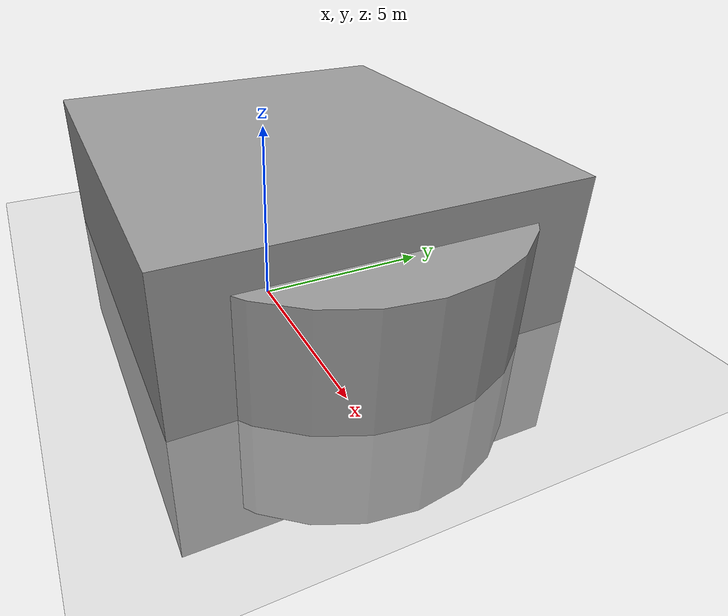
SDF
<sdf version="1.7">
 <world name="default">
  <light name="sun" type="directional">
   <pose>0 0 10 0 -0 0</pose>
   <diffuse>0.8 0.8 0.8 1</diffuse>
   <specular>0.2 0.2 0.2 1</specular>
   <attenuation>
    <range>1000</range>
    <constant>0.9</constant>
    <linear>0.01</linear>
    <quadratic>0.001</quadratic>
   </attenuation>
   <direction>-0.5 0.1 -0.9</direction>
   <spot><inner_angle>0</inner_angle><outer_angle>0</outer_angle><falloff>0</falloff></spot>
  </light>
  <model name="ground_plane">
   <static>1</static>
   <link name="link">
    <collision name="collision">
     <geometry><plane><normal>0 0 1</normal><size>100 100</size></plane></geometry>
     <surface>
      <contact><collide_bitmask>65535</collide_bitmask></contact>
      <friction><ode><mu>100</mu><mu2>50</mu2></ode></friction>
     </surface>
    </collision>
    <visual name="visual">
     <cast_shadows>0</cast_shadows>
     <geometry><plane><normal>0 0 1</normal><size>100 100</size></plane></geometry>
     <material>
      <script><uri>file://media/materials/scripts/gazebo.material</uri><name>Gazebo/Grey</name></script>
     </material>
    </visual>
   </link>
  </model>
  <gravity>0 0 -9.8</gravity>
  <magnetic_field>6e-06 2.3e-05 -4.2e-05</magnetic_field>
  <atmosphere type="adiabatic"/>
  <physics type="ode">
   <max_step_size>0.001</max_step_size>
   <real_time_factor>1</real_time_factor>
   <real_time_update_rate>1000</real_time_update_rate>
  </physics>
  <scene><ambient>0.4 0.4 0.4 1</ambient><background>0.7 0.7 0.7 1</background><shadows>1</shadows></scene>
  <spherical_coordinates>
   <surface_model>EARTH_WGS84</surface_model>
   <latitude_deg>0</latitude_deg>
   <longitude_deg>0</longitude_deg>
   <elevation>0</elevation>
   <heading_deg>0</heading_deg>
  </spherical_coordinates>
  <model name="workspace2">
   <pose>0.134816 0.665409 0 0 -0 0</pose>
   <link name="Wall_10">
    <collision name="Wall_10_Collision">
     <geometry><box><size>6.25 0.15 2.5</size></box></geometry>
     <pose>0 0 1.25 0 -0 0</pose>
    </collision>
    <visual name="Wall_10_Visual">
     <pose>0 0 1.25 0 -0 0</pose>
     <geometry><box><size>6.25 0.15 2.5</size></box></geometry>
     <material>
      <script><uri>file://media/materials/scripts/gazebo.material</uri><name>Gazebo/Grey</name></script>
      <ambient>1 0.764706 0.305882 1</ambient>
     </material>
     <meta><layer>0</layer></meta>
    </visual>
    <pose>0.007511 -3.05616 0 0 -0 3.14159</pose>
   </link>
   <link name="Wall_11">
    <collision name="Wall_11_Collision">
     <geometry><box><size>6.26234 0.15 2.5</size></box></geometry>
     <pose>0 0 1.25 0 -0 0</pose>
    </collision>
    <visual name="Wall_11_Visual">
     <pose>0 0 1.25 0 -0 0</pose>
     <geometry><box><size>6.26234 0.15 2.5</size></box></geometry>
     <material>
      <script><uri>file://media/materials/scripts/gazebo.material</uri><name>Gazebo/Grey</name></script>
      <ambient>1 0.764706 0.305882 1</ambient>
     </material>
     <meta><layer>0</layer></meta>
    </visual>
    <pose>-3.03488 0 0 0 -0 1.57329</pose>
   </link>
   <link name="Wall_12">
    <collision name="Wall_12_Collision">
     <geometry><box><size>6.25 0.15 2.5</size></box></geometry>
     <pose>0 0 1.25 0 -0 0</pose>
    </collision>
    <visual name="Wall_12_Visual">
     <pose>0 0 1.25 0 -0 0</pose>
     <geometry><box><size>6.25 0.15 2.5</size></box></geometry>
     <material>
      <script><uri>file://media/materials/scripts/gazebo.material</uri><name>Gazebo/Grey</name></script>
      <ambient>1 0.764706 0.305882 1</ambient>
     </material>
     <meta><layer>0</layer></meta>
    </visual>
    <pose>-0.007698 3.05616 0 0 -0 0</pose>
   </link>
   <link name="Wall_13">
    <collision name="Wall_13_Collision">
     <geometry><box><size>6.26234 0.15 2.5</size></box></geometry>
     <pose>0 0 1.25 0 -0 0</pose>
    </collision>
    <visual name="Wall_13_Visual">
     <pose>0 0 1.25 0 -0 0</pose>
     <geometry><box><size>6.26234 0.15 2.5</size></box></geometry>
     <material>
      <script><uri>file://media/materials/scripts/gazebo.material</uri><name>Gazebo/Grey</name></script>
      <ambient>1 0.764706 0.305882 1</ambient>
     </material>
     <meta><layer>0</layer></meta>
    </visual>
    <pose>3.04991 0 0 0 -0 -1.56831</pose>
   </link>
   <static>1</static>
  </model>
  <model name="unit_box">
   <pose>-1.22432 1.29976 0.175081 0 0 -3.7e-05</pose>
   <link name="link">
    <inertial>
     <mass>1</mass>
     <inertia>
      <ixx>0.166667</ixx>
      <ixy>0</ixy>
      <ixz>0</ixz>
      <iyy>0.166667</iyy>
      <iyz>0</iyz>
      <izz>0.166667</izz>
     </inertia>
    </inertial>
    <collision name="collision"><geometry><box><size>11.7093 10.9746 8.15573</size></box></geometry></collision>
    <visual name="visual">
     <geometry><box><size>11.7093 10.9746 8.15573</size></box></geometry>
     <material>
      <script><name>Gazebo/Grey</name><uri>file://media/materials/scripts/gazebo.material</uri></script>
     </material>
    </visual>
   </link>
  </model>
  <model name="unit_cylinder">
   <pose>1.25433 1.34885 0.200235 0 -0 0</pose>
   <link name="link">
    <inertial>
     <mass>1</mass>
     <inertia><ixx>0.145833</ixx><ixy>0</ixy><ixz>0</ixz><iyy>0.145833</iyy><iyz>0</iyz><izz>0.125</izz></inertia>
    </inertial>
    <collision name="collision">
     <geometry><cylinder><radius>5.19263</radius><length>6.23473</length></cylinder></geometry>
    </collision>
    <visual name="visual">
     <geometry><cylinder><radius>5.19263</radius><length>6.23473</length></cylinder></geometry>
     <material>
      <script><name>Gazebo/Grey</name><uri>file://media/materials/scripts/gazebo.material</uri></script>
     </material>
    </visual>
   </link>
  </model>
  <light name="user_directional_light_0" type="directional">
   <pose>0.120004 1.81494 1 0 -0 0</pose>
   <diffuse>0.5 0.5 0.5 1</diffuse>
   <specular>0.1 0.1 0.1 1</specular>
   <direction>0.1 0.1 -0.9</direction>
   <attenuation>
    <range>20</range>
    <constant>0.5</constant>
    <linear>0.01</linear>
    <quadratic>0.001</quadratic>
   </attenuation>
  </light>
  <light name="user_directional_light_1" type="directional">
   <pose>0.260652 -0.876029 1 0 -0 0</pose>
   <diffuse>0.5 0.5 0.5 1</diffuse>
   <specular>0.1 0.1 0.1 1</specular>
   <direction>0.1 0.1 -0.9</direction>
   <attenuation>
    <range>20</range>
    <constant>0.5</constant>
    <linear>0.01</linear>
    <quadratic>0.001</quadratic>
   </attenuation>
  </light>
 </world>
</sdf>
